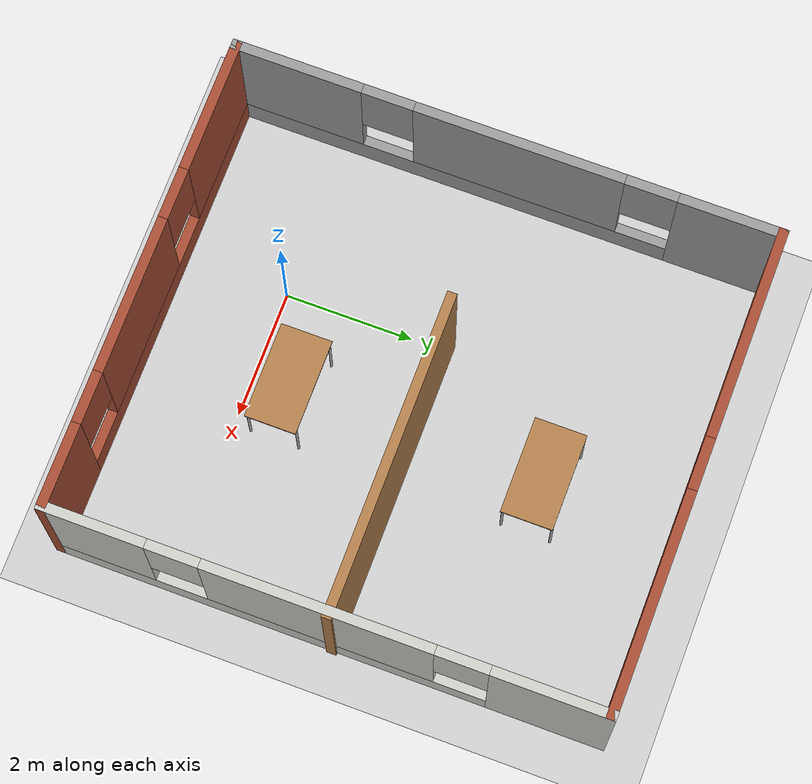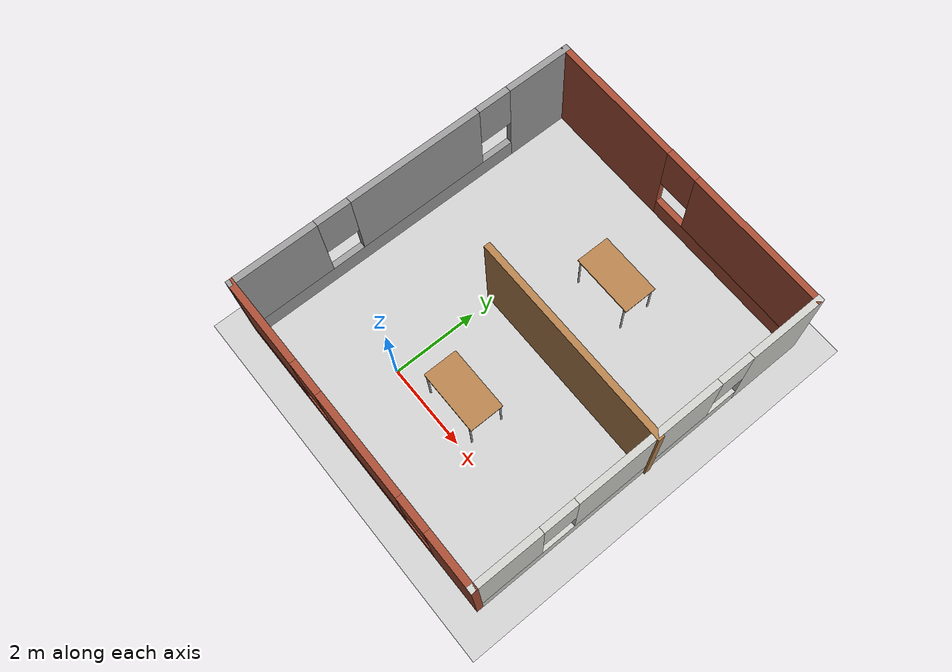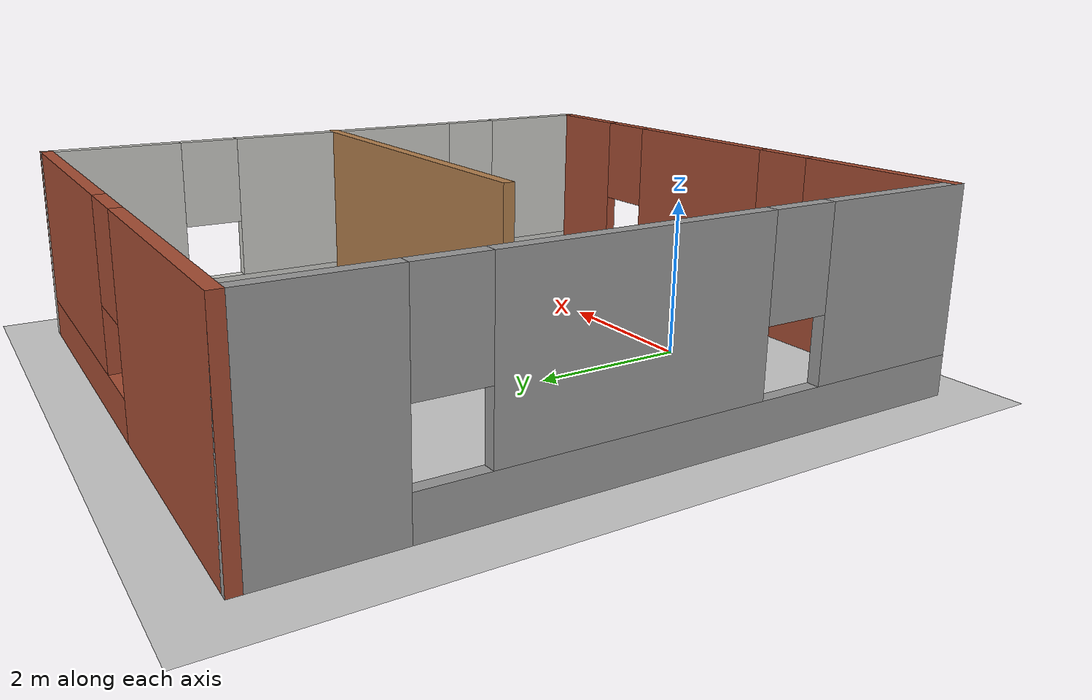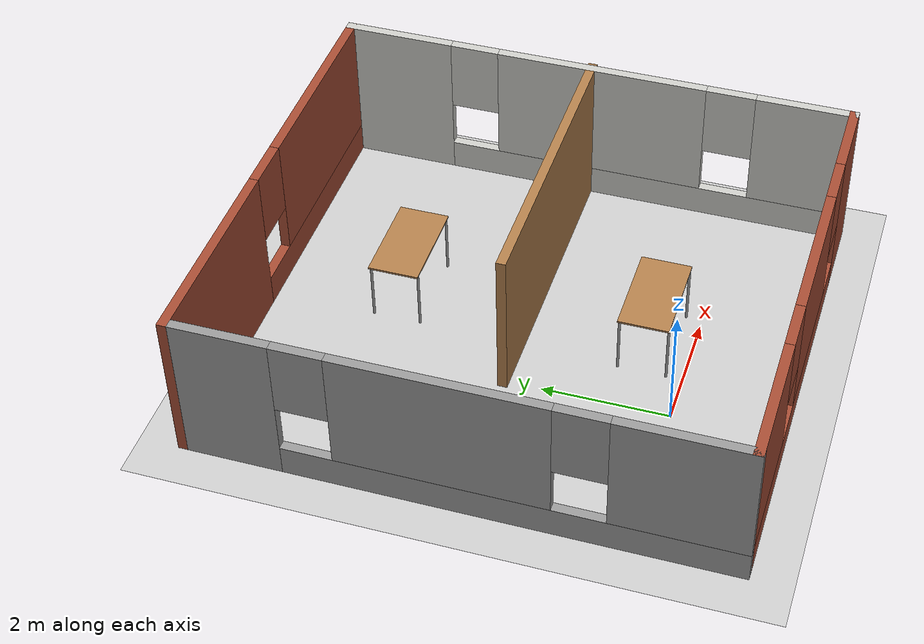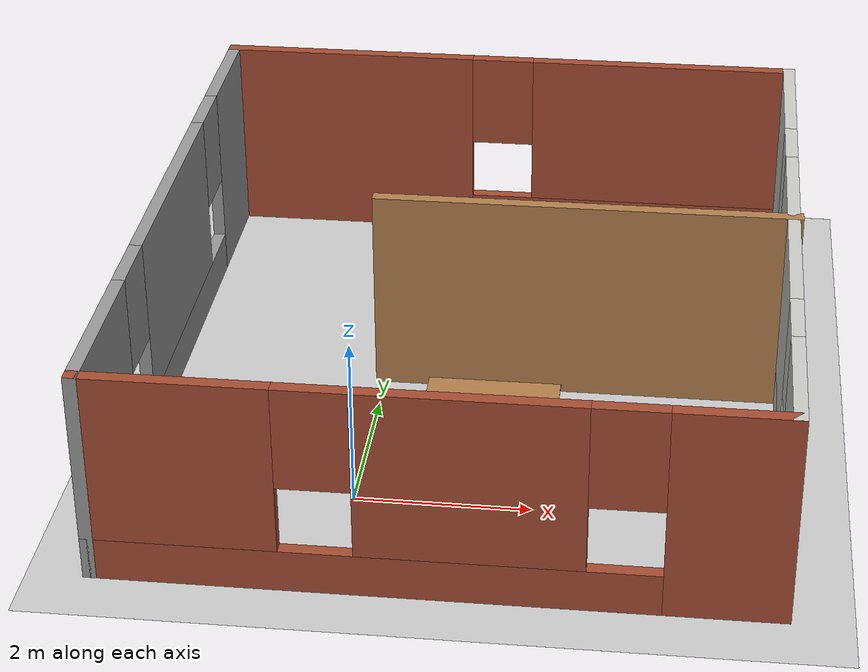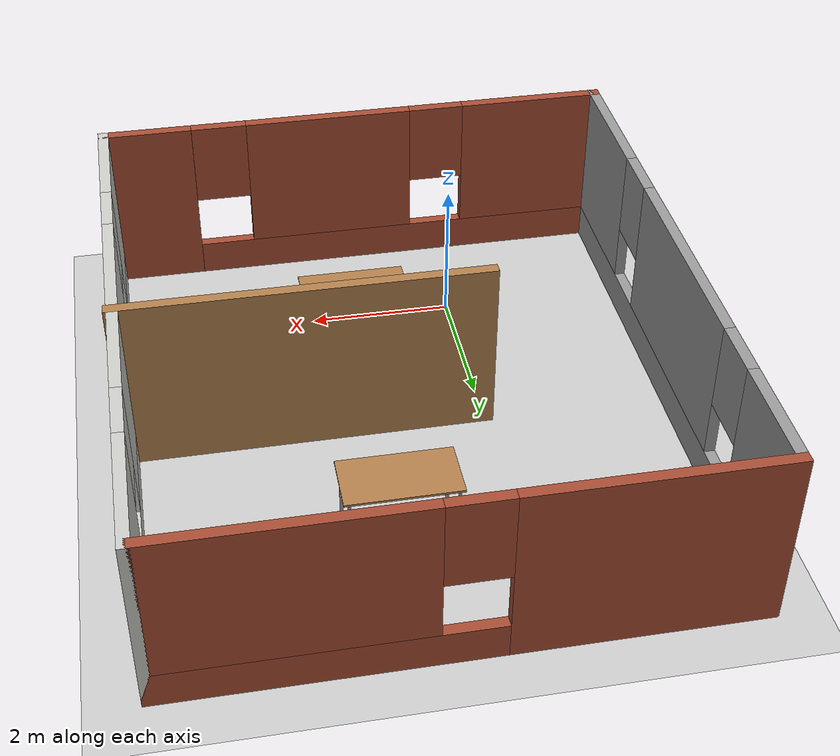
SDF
<sdf version="1.6">
 <world name="default">
  <light name="sun" type="directional">
   <pose>0 0 10 0 -0 0</pose>
   <diffuse>0.8 0.8 0.8 1</diffuse>
   <specular>0.2 0.2 0.2 1</specular>
   <attenuation>
    <range>1000</range>
    <constant>0.9</constant>
    <linear>0.01</linear>
    <quadratic>0.001</quadratic>
   </attenuation>
   <direction>-0.5 0.1 -0.9</direction>
  </light>
  <model name="ground_plane">
   <static>1</static>
   <link name="link">
    <collision name="collision">
     <geometry><plane><normal>0 0 1</normal><size>100 100</size></plane></geometry>
     <surface><friction><ode><mu>100</mu><mu2>50</mu2></ode></friction></surface>
    </collision>
    <visual name="visual">
     <cast_shadows>0</cast_shadows>
     <geometry><plane><normal>0 0 1</normal><size>100 100</size></plane></geometry>
     <material>
      <script><uri>file://media/materials/scripts/gazebo.material</uri><name>Gazebo/Grey</name></script>
     </material>
    </visual>
   </link>
  </model>
  <gravity>0 0 -9.8</gravity>
  <magnetic_field>6e-06 2.3e-05 -4.2e-05</magnetic_field>
  <atmosphere type="adiabatic"/>
  <physics name="default_physics" default="0" type="ode">
   <max_step_size>0.001</max_step_size>
   <real_time_factor>1</real_time_factor>
   <real_time_update_rate>1000</real_time_update_rate>
  </physics>
  <scene><ambient>0.4 0.4 0.4 1</ambient><background>0.7 0.7 0.7 1</background><shadows>1</shadows></scene>
  <spherical_coordinates>
   <surface_model>EARTH_WGS84</surface_model>
   <latitude_deg>0</latitude_deg>
   <longitude_deg>0</longitude_deg>
   <elevation>0</elevation>
   <heading_deg>0</heading_deg>
  </spherical_coordinates>
  <model name="myworld_4">
   <pose>1.11493 2.505 0 0 -0 0</pose>
   <link name="Wall_1">
    <pose>-0.019933 4.175 0 0 -0 0</pose>
    <visual name="Wall_1_Visual_0">
     <pose>-2.11037 0 1.25 0 -0 0</pose>
     <geometry><box><size>3.27925 0.15 2.5</size></box></geometry>
     <material>
      <script><uri>file://media/materials/scripts/gazebo.material</uri><name>Gazebo/Bricks</name></script>
      <ambient>1 1 1 1</ambient>
     </material>
     <meta><layer>0</layer></meta>
    </visual>
    <collision name="Wall_1_Collision_0">
     <geometry><box><size>3.27925 0.15 2.5</size></box></geometry>
     <pose>-2.11037 0 1.25 0 -0 0</pose>
    </collision>
    <visual name="Wall_1_Visual_1">
     <pose>1.63963 0 0.25 0 -0 0</pose>
     <geometry><box><size>4.22075 0.15 0.5</size></box></geometry>
     <material>
      <script><uri>file://media/materials/scripts/gazebo.material</uri><name>Gazebo/Bricks</name></script>
      <ambient>1 1 1 1</ambient>
     </material>
     <meta><layer>0</layer></meta>
    </visual>
    <collision name="Wall_1_Collision_1">
     <geometry><box><size>4.22075 0.15 0.5</size></box></geometry>
     <pose>1.63963 0 0.25 0 -0 0</pose>
    </collision>
    <visual name="Wall_1_Visual_2">
     <pose>2.03963 0 1.5 0 -0 0</pose>
     <geometry><box><size>3.42075 0.15 2</size></box></geometry>
     <material>
      <script><uri>file://media/materials/scripts/gazebo.material</uri><name>Gazebo/Bricks</name></script>
      <ambient>1 1 1 1</ambient>
     </material>
     <meta><layer>0</layer></meta>
    </visual>
    <collision name="Wall_1_Collision_2">
     <geometry><box><size>3.42075 0.15 2</size></box></geometry>
     <pose>2.03963 0 1.5 0 -0 0</pose>
    </collision>
    <visual name="Wall_1_Visual_3">
     <pose>-0.07075 0 1.9 0 -0 0</pose>
     <geometry><box><size>0.8 0.15 1.2</size></box></geometry>
     <material>
      <script><uri>file://media/materials/scripts/gazebo.material</uri><name>Gazebo/Bricks</name></script>
      <ambient>1 1 1 1</ambient>
     </material>
     <meta><layer>0</layer></meta>
    </visual>
    <collision name="Wall_1_Collision_3">
     <geometry><box><size>0.8 0.15 1.2</size></box></geometry>
     <pose>-0.07075 0 1.9 0 -0 0</pose>
    </collision>
   </link>
   <link name="Wall_2">
    <pose>3.65507 0 0 0 0 -1.5708</pose>
    <visual name="Wall_2_Visual_0">
     <pose>-3.33897 0 1.25 0 -0 0</pose>
     <geometry><box><size>1.82206 0.15 2.5</size></box></geometry>
     <material>
      <script><uri>file://media/materials/scripts/gazebo.material</uri><name>Gazebo/CeilingTiled</name></script>
      <ambient>1 1 1 1</ambient>
     </material>
     <meta><layer>0</layer></meta>
    </visual>
    <collision name="Wall_2_Collision_0">
     <geometry><box><size>1.82206 0.15 2.5</size></box></geometry>
     <pose>-3.33897 0 1.25 0 -0 0</pose>
    </collision>
    <visual name="Wall_2_Visual_1">
     <pose>0.911032 0 0.25 0 -0 0</pose>
     <geometry><box><size>6.67794 0.15 0.5</size></box></geometry>
     <material>
      <script><uri>file://media/materials/scripts/gazebo.material</uri><name>Gazebo/CeilingTiled</name></script>
      <ambient>1 1 1 1</ambient>
     </material>
     <meta><layer>0</layer></meta>
    </visual>
    <collision name="Wall_2_Collision_1">
     <geometry><box><size>6.67794 0.15 0.5</size></box></geometry>
     <pose>0.911032 0 0.25 0 -0 0</pose>
    </collision>
    <visual name="Wall_2_Visual_2">
     <pose>0.10008 0 1.5 0 -0 0</pose>
     <geometry><box><size>3.45603 0.15 2</size></box></geometry>
     <material>
      <script><uri>file://media/materials/scripts/gazebo.material</uri><name>Gazebo/CeilingTiled</name></script>
      <ambient>1 1 1 1</ambient>
     </material>
     <meta><layer>0</layer></meta>
    </visual>
    <collision name="Wall_2_Collision_2">
     <geometry><box><size>3.45603 0.15 2</size></box></geometry>
     <pose>0.10008 0 1.5 0 -0 0</pose>
    </collision>
    <visual name="Wall_2_Visual_3">
     <pose>3.43905 0 1.5 0 -0 0</pose>
     <geometry><box><size>1.6219 0.15 2</size></box></geometry>
     <material>
      <script><uri>file://media/materials/scripts/gazebo.material</uri><name>Gazebo/CeilingTiled</name></script>
      <ambient>1 1 1 1</ambient>
     </material>
     <meta><layer>0</layer></meta>
    </visual>
    <collision name="Wall_2_Collision_3">
     <geometry><box><size>1.6219 0.15 2</size></box></geometry>
     <pose>3.43905 0 1.5 0 -0 0</pose>
    </collision>
    <visual name="Wall_2_Visual_4">
     <pose>-2.02794 0 1.9 0 -0 0</pose>
     <geometry><box><size>0.8 0.15 1.2</size></box></geometry>
     <material>
      <script><uri>file://media/materials/scripts/gazebo.material</uri><name>Gazebo/CeilingTiled</name></script>
      <ambient>1 1 1 1</ambient>
     </material>
     <meta><layer>0</layer></meta>
    </visual>
    <collision name="Wall_2_Collision_4">
     <geometry><box><size>0.8 0.15 1.2</size></box></geometry>
     <pose>-2.02794 0 1.9 0 -0 0</pose>
    </collision>
    <visual name="Wall_2_Visual_5">
     <pose>2.2281 0 1.9 0 -0 0</pose>
     <geometry><box><size>0.8 0.15 1.2</size></box></geometry>
     <material>
      <script><uri>file://media/materials/scripts/gazebo.material</uri><name>Gazebo/CeilingTiled</name></script>
      <ambient>1 1 1 1</ambient>
     </material>
     <meta><layer>0</layer></meta>
    </visual>
    <collision name="Wall_2_Collision_5">
     <geometry><box><size>0.8 0.15 1.2</size></box></geometry>
     <pose>2.2281 0 1.9 0 -0 0</pose>
    </collision>
   </link>
   <link name="Wall_3">
    <pose>-0.019933 -4.175 0 0 -0 3.14159</pose>
    <visual name="Wall_3_Visual_0">
     <pose>-3.0805 0 1.25 0 -0 0</pose>
     <geometry><box><size>1.33899 0.15 2.5</size></box></geometry>
     <material>
      <script><uri>file://media/materials/scripts/gazebo.material</uri><name>Gazebo/Bricks</name></script>
      <ambient>1 1 1 1</ambient>
     </material>
     <meta><layer>0</layer></meta>
    </visual>
    <collision name="Wall_3_Collision_0">
     <geometry><box><size>1.33899 0.15 2.5</size></box></geometry>
     <pose>-3.0805 0 1.25 0 -0 0</pose>
    </collision>
    <visual name="Wall_3_Visual_1">
     <pose>0.669498 0 0.25 0 -0 0</pose>
     <geometry><box><size>6.16101 0.15 0.5</size></box></geometry>
     <material>
      <script><uri>file://media/materials/scripts/gazebo.material</uri><name>Gazebo/Bricks</name></script>
      <ambient>1 1 1 1</ambient>
     </material>
     <meta><layer>0</layer></meta>
    </visual>
    <collision name="Wall_3_Collision_1">
     <geometry><box><size>6.16101 0.15 0.5</size></box></geometry>
     <pose>0.669498 0 0.25 0 -0 0</pose>
    </collision>
    <visual name="Wall_3_Visual_2">
     <pose>-0.391862 0 1.5 0 -0 0</pose>
     <geometry><box><size>2.43829 0.15 2</size></box></geometry>
     <material>
      <script><uri>file://media/materials/scripts/gazebo.material</uri><name>Gazebo/Bricks</name></script>
      <ambient>1 1 1 1</ambient>
     </material>
     <meta><layer>0</layer></meta>
    </visual>
    <collision name="Wall_3_Collision_2">
     <geometry><box><size>2.43829 0.15 2</size></box></geometry>
     <pose>-0.391862 0 1.5 0 -0 0</pose>
    </collision>
    <visual name="Wall_3_Visual_3">
     <pose>2.68864 0 1.5 0 -0 0</pose>
     <geometry><box><size>2.12272 0.15 2</size></box></geometry>
     <material>
      <script><uri>file://media/materials/scripts/gazebo.material</uri><name>Gazebo/Bricks</name></script>
      <ambient>1 1 1 1</ambient>
     </material>
     <meta><layer>0</layer></meta>
    </visual>
    <collision name="Wall_3_Collision_3">
     <geometry><box><size>2.12272 0.15 2</size></box></geometry>
     <pose>2.68864 0 1.5 0 -0 0</pose>
    </collision>
    <visual name="Wall_3_Visual_4">
     <pose>-2.011 0 1.9 0 -0 0</pose>
     <geometry><box><size>0.8 0.15 1.2</size></box></geometry>
     <material>
      <script><uri>file://media/materials/scripts/gazebo.material</uri><name>Gazebo/Bricks</name></script>
      <ambient>1 1 1 1</ambient>
     </material>
     <meta><layer>0</layer></meta>
    </visual>
    <collision name="Wall_3_Collision_4">
     <geometry><box><size>0.8 0.15 1.2</size></box></geometry>
     <pose>-2.011 0 1.9 0 -0 0</pose>
    </collision>
    <visual name="Wall_3_Visual_5">
     <pose>1.22728 0 1.9 0 -0 0</pose>
     <geometry><box><size>0.8 0.15 1.2</size></box></geometry>
     <material>
      <script><uri>file://media/materials/scripts/gazebo.material</uri><name>Gazebo/Bricks</name></script>
      <ambient>1 1 1 1</ambient>
     </material>
     <meta><layer>0</layer></meta>
    </visual>
    <collision name="Wall_3_Collision_5">
     <geometry><box><size>0.8 0.15 1.2</size></box></geometry>
     <pose>1.22728 0 1.9 0 -0 0</pose>
    </collision>
   </link>
   <link name="Wall_4">
    <collision name="Wall_4_Collision">
     <geometry><box><size>0.15 0.15 2.5</size></box></geometry>
     <pose>0 0 1.25 0 -0 0</pose>
    </collision>
    <visual name="Wall_4_Visual">
     <pose>0 0 1.25 0 -0 0</pose>
     <geometry><box><size>0.15 0.15 2.5</size></box></geometry>
     <material>
      <script><uri>file://media/materials/scripts/gazebo.material</uri><name>Gazebo/Grey</name></script>
      <ambient>1 1 1 1</ambient>
     </material>
     <meta><layer>0</layer></meta>
    </visual>
    <pose>-3.69493 -4.175 0 0 -0 0</pose>
   </link>
   <link name="Wall_7">
    <pose>-3.69493 0 0 0 0 -1.5708</pose>
    <visual name="Wall_7_Visual_0">
     <pose>-3.43149 0 1.25 0 -0 0</pose>
     <geometry><box><size>1.63702 0.15 2.5</size></box></geometry>
     <material>
      <script><uri>file://media/materials/scripts/gazebo.material</uri><name>Gazebo/Grey</name></script>
      <ambient>1 1 1 1</ambient>
     </material>
     <meta><layer>0</layer></meta>
    </visual>
    <collision name="Wall_7_Collision_0">
     <geometry><box><size>1.63702 0.15 2.5</size></box></geometry>
     <pose>-3.43149 0 1.25 0 -0 0</pose>
    </collision>
    <visual name="Wall_7_Visual_1">
     <pose>0.81851 0 0.25 0 -0 0</pose>
     <geometry><box><size>6.86298 0.15 0.5</size></box></geometry>
     <material>
      <script><uri>file://media/materials/scripts/gazebo.material</uri><name>Gazebo/Grey</name></script>
      <ambient>1 1 1 1</ambient>
     </material>
     <meta><layer>0</layer></meta>
    </visual>
    <collision name="Wall_7_Collision_1">
     <geometry><box><size>6.86298 0.15 0.5</size></box></geometry>
     <pose>0.81851 0 0.25 0 -0 0</pose>
    </collision>
    <visual name="Wall_7_Visual_2">
     <pose>-0.200617 0 1.5 0 -0 0</pose>
     <geometry><box><size>3.22473 0.15 2</size></box></geometry>
     <material>
      <script><uri>file://media/materials/scripts/gazebo.material</uri><name>Gazebo/Grey</name></script>
      <ambient>1 1 1 1</ambient>
     </material>
     <meta><layer>0</layer></meta>
    </visual>
    <collision name="Wall_7_Collision_2">
     <geometry><box><size>3.22473 0.15 2</size></box></geometry>
     <pose>-0.200617 0 1.5 0 -0 0</pose>
    </collision>
    <visual name="Wall_7_Visual_3">
     <pose>3.23087 0 1.5 0 -0 0</pose>
     <geometry><box><size>2.03825 0.15 2</size></box></geometry>
     <material>
      <script><uri>file://media/materials/scripts/gazebo.material</uri><name>Gazebo/Grey</name></script>
      <ambient>1 1 1 1</ambient>
     </material>
     <meta><layer>0</layer></meta>
    </visual>
    <collision name="Wall_7_Collision_3">
     <geometry><box><size>2.03825 0.15 2</size></box></geometry>
     <pose>3.23087 0 1.5 0 -0 0</pose>
    </collision>
    <visual name="Wall_7_Visual_4">
     <pose>-2.21298 0 1.9 0 -0 0</pose>
     <geometry><box><size>0.8 0.15 1.2</size></box></geometry>
     <material>
      <script><uri>file://media/materials/scripts/gazebo.material</uri><name>Gazebo/Grey</name></script>
      <ambient>1 1 1 1</ambient>
     </material>
     <meta><layer>0</layer></meta>
    </visual>
    <collision name="Wall_7_Collision_4">
     <geometry><box><size>0.8 0.15 1.2</size></box></geometry>
     <pose>-2.21298 0 1.9 0 -0 0</pose>
    </collision>
    <visual name="Wall_7_Visual_5">
     <pose>1.81174 0 1.9 0 -0 0</pose>
     <geometry><box><size>0.8 0.15 1.2</size></box></geometry>
     <material>
      <script><uri>file://media/materials/scripts/gazebo.material</uri><name>Gazebo/Grey</name></script>
      <ambient>1 1 1 1</ambient>
     </material>
     <meta><layer>0</layer></meta>
    </visual>
    <collision name="Wall_7_Collision_5">
     <geometry><box><size>0.8 0.15 1.2</size></box></geometry>
     <pose>1.81174 0 1.9 0 -0 0</pose>
    </collision>
   </link>
   <link name="Wall_9">
    <collision name="Wall_9_Collision">
     <geometry><box><size>5 0.15 2.5</size></box></geometry>
     <pose>0 0 1.25 0 -0 0</pose>
    </collision>
    <visual name="Wall_9_Visual">
     <pose>0 0 1.25 0 -0 0</pose>
     <geometry><box><size>5 0.15 2.5</size></box></geometry>
     <material>
      <script><uri>file://media/materials/scripts/gazebo.material</uri><name>Gazebo/Wood</name></script>
      <ambient>1 1 1 1</ambient>
     </material>
     <meta><layer>0</layer></meta>
    </visual>
    <pose>1.26993 0.076777 0 0 -0 3.14159</pose>
   </link>
   <static>1</static>
  </model>
  <model name="table">
   <static>1</static>
   <link name="link">
    <collision name="surface">
     <pose>0 0 1 0 -0 0</pose>
     <geometry><box><size>1.5 0.8 0.03</size></box></geometry>
     <surface><friction><ode><mu>0.6</mu><mu2>0.6</mu2></ode></friction></surface>
    </collision>
    <visual name="visual1">
     <pose>0 0 1 0 -0 0</pose>
     <geometry><box><size>1.5 0.8 0.03</size></box></geometry>
     <material>
      <script><uri>file://media/materials/scripts/gazebo.material</uri><name>Gazebo/Wood</name></script>
     </material>
    </visual>
    <collision name="front_left_leg">
     <pose>0.68 0.38 0.5 0 -0 0</pose>
     <geometry><cylinder><radius>0.02</radius><length>1</length></cylinder></geometry>
    </collision>
    <visual name="front_left_leg">
     <pose>0.68 0.38 0.5 0 -0 0</pose>
     <geometry><cylinder><radius>0.02</radius><length>1</length></cylinder></geometry>
     <material>
      <script><uri>file://media/materials/scripts/gazebo.material</uri><name>Gazebo/Grey</name></script>
     </material>
    </visual>
    <collision name="front_right_leg">
     <pose>0.68 -0.38 0.5 0 -0 0</pose>
     <geometry><cylinder><radius>0.02</radius><length>1</length></cylinder></geometry>
    </collision>
    <visual name="front_right_leg">
     <pose>0.68 -0.38 0.5 0 -0 0</pose>
     <geometry><cylinder><radius>0.02</radius><length>1</length></cylinder></geometry>
     <material>
      <script><uri>file://media/materials/scripts/gazebo.material</uri><name>Gazebo/Grey</name></script>
     </material>
    </visual>
    <collision name="back_right_leg">
     <pose>-0.68 -0.38 0.5 0 -0 0</pose>
     <geometry><cylinder><radius>0.02</radius><length>1</length></cylinder></geometry>
    </collision>
    <visual name="back_right_leg">
     <pose>-0.68 -0.38 0.5 0 -0 0</pose>
     <geometry><cylinder><radius>0.02</radius><length>1</length></cylinder></geometry>
     <material>
      <script><uri>file://media/materials/scripts/gazebo.material</uri><name>Gazebo/Grey</name></script>
     </material>
    </visual>
    <collision name="back_left_leg">
     <pose>-0.68 0.38 0.5 0 -0 0</pose>
     <geometry><cylinder><radius>0.02</radius><length>1</length></cylinder></geometry>
    </collision>
    <visual name="back_left_leg">
     <pose>-0.68 0.38 0.5 0 -0 0</pose>
     <geometry><cylinder><radius>0.02</radius><length>1</length></cylinder></geometry>
     <material>
      <script><uri>file://media/materials/scripts/gazebo.material</uri><name>Gazebo/Grey</name></script>
     </material>
    </visual>
   </link>
   <pose>1.48147 0.643077 0 0 -0 0</pose>
  </model>
  <model name="table_0">
   <static>1</static>
   <link name="link">
    <collision name="surface">
     <pose>0 0 1 0 -0 0</pose>
     <geometry><box><size>1.5 0.8 0.03</size></box></geometry>
     <surface><friction><ode><mu>0.6</mu><mu2>0.6</mu2></ode></friction></surface>
    </collision>
    <visual name="visual1">
     <pose>0 0 1 0 -0 0</pose>
     <geometry><box><size>1.5 0.8 0.03</size></box></geometry>
     <material>
      <script><uri>file://media/materials/scripts/gazebo.material</uri><name>Gazebo/Wood</name></script>
     </material>
    </visual>
    <collision name="front_left_leg">
     <pose>0.68 0.38 0.5 0 -0 0</pose>
     <geometry><cylinder><radius>0.02</radius><length>1</length></cylinder></geometry>
    </collision>
    <visual name="front_left_leg">
     <pose>0.68 0.38 0.5 0 -0 0</pose>
     <geometry><cylinder><radius>0.02</radius><length>1</length></cylinder></geometry>
     <material>
      <script><uri>file://media/materials/scripts/gazebo.material</uri><name>Gazebo/Grey</name></script>
     </material>
    </visual>
    <collision name="front_right_leg">
     <pose>0.68 -0.38 0.5 0 -0 0</pose>
     <geometry><cylinder><radius>0.02</radius><length>1</length></cylinder></geometry>
    </collision>
    <visual name="front_right_leg">
     <pose>0.68 -0.38 0.5 0 -0 0</pose>
     <geometry><cylinder><radius>0.02</radius><length>1</length></cylinder></geometry>
     <material>
      <script><uri>file://media/materials/scripts/gazebo.material</uri><name>Gazebo/Grey</name></script>
     </material>
    </visual>
    <collision name="back_right_leg">
     <pose>-0.68 -0.38 0.5 0 -0 0</pose>
     <geometry><cylinder><radius>0.02</radius><length>1</length></cylinder></geometry>
    </collision>
    <visual name="back_right_leg">
     <pose>-0.68 -0.38 0.5 0 -0 0</pose>
     <geometry><cylinder><radius>0.02</radius><length>1</length></cylinder></geometry>
     <material>
      <script><uri>file://media/materials/scripts/gazebo.material</uri><name>Gazebo/Grey</name></script>
     </material>
    </visual>
    <collision name="back_left_leg">
     <pose>-0.68 0.38 0.5 0 -0 0</pose>
     <geometry><cylinder><radius>0.02</radius><length>1</length></cylinder></geometry>
    </collision>
    <visual name="back_left_leg">
     <pose>-0.68 0.38 0.5 0 -0 0</pose>
     <geometry><cylinder><radius>0.02</radius><length>1</length></cylinder></geometry>
     <material>
      <script><uri>file://media/materials/scripts/gazebo.material</uri><name>Gazebo/Grey</name></script>
     </material>
    </visual>
   </link>
   <pose>1.53169 4.60902 0 0 -0 0</pose>
  </model>
 </world>
</sdf>
